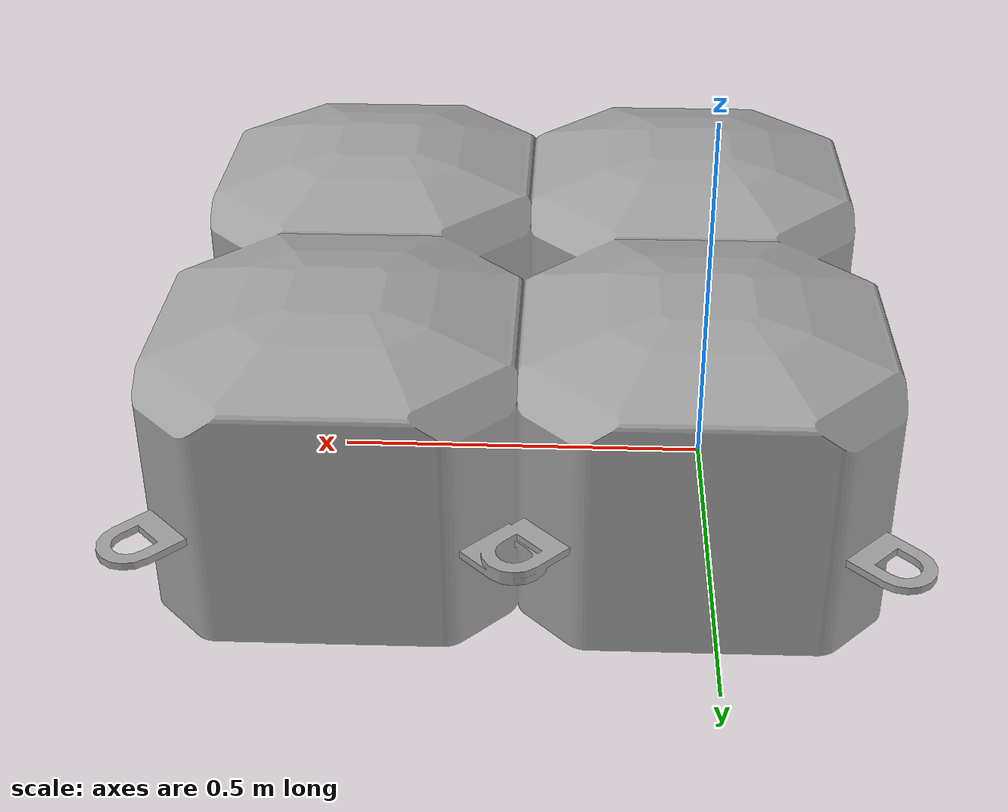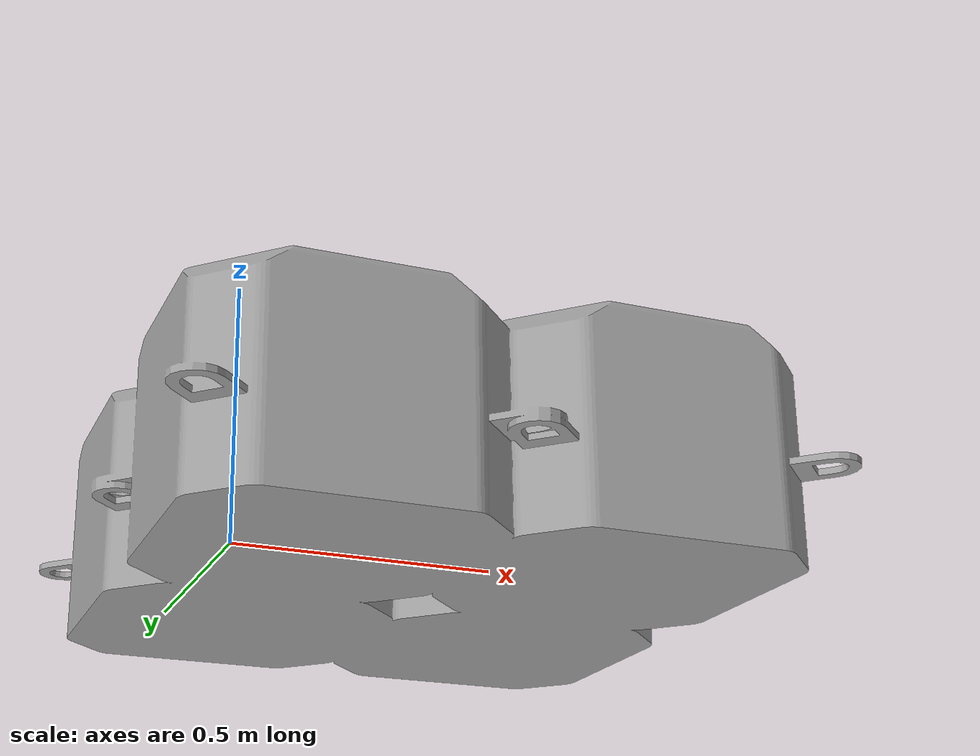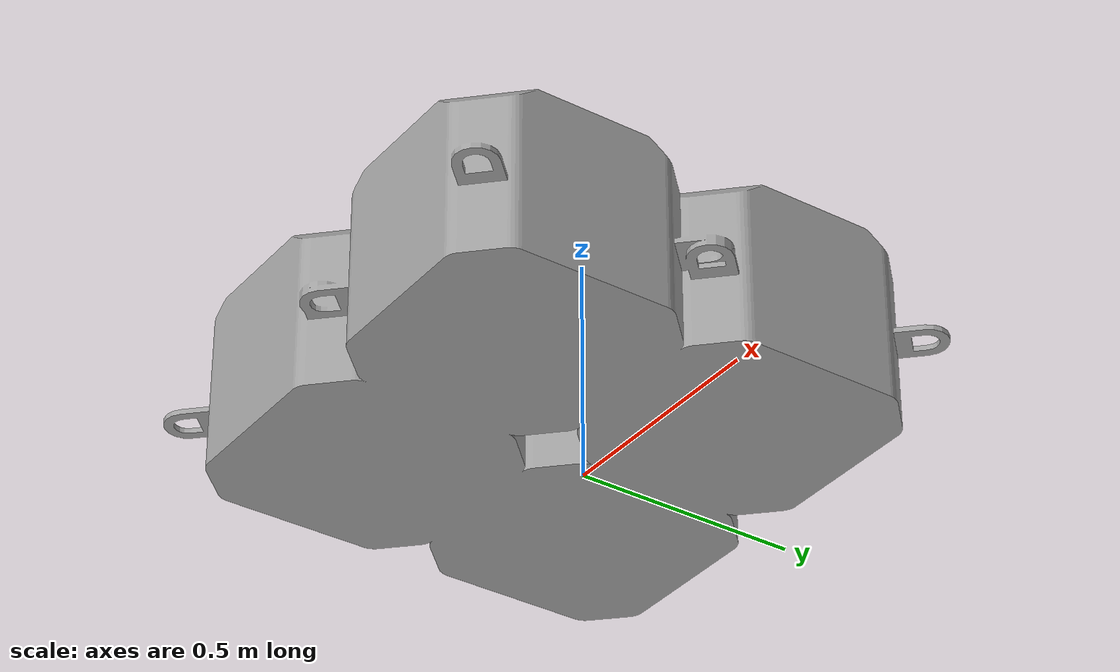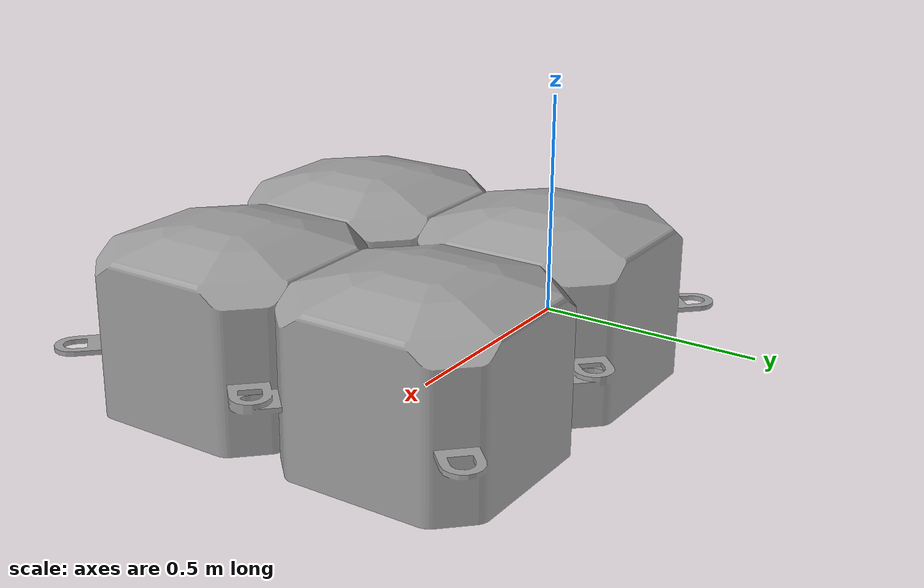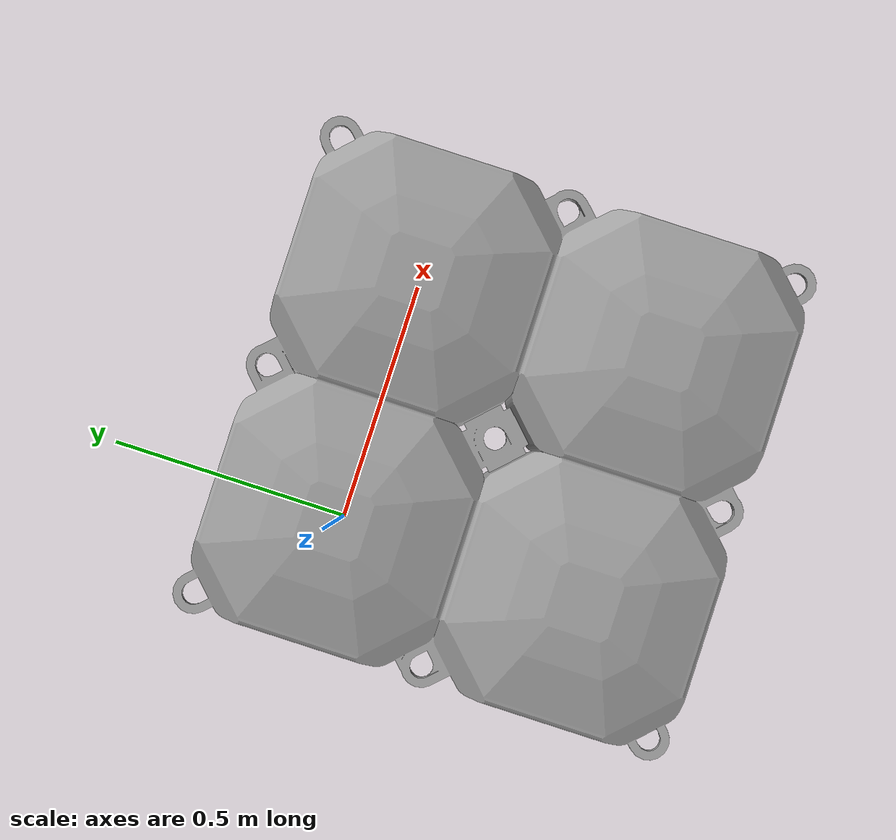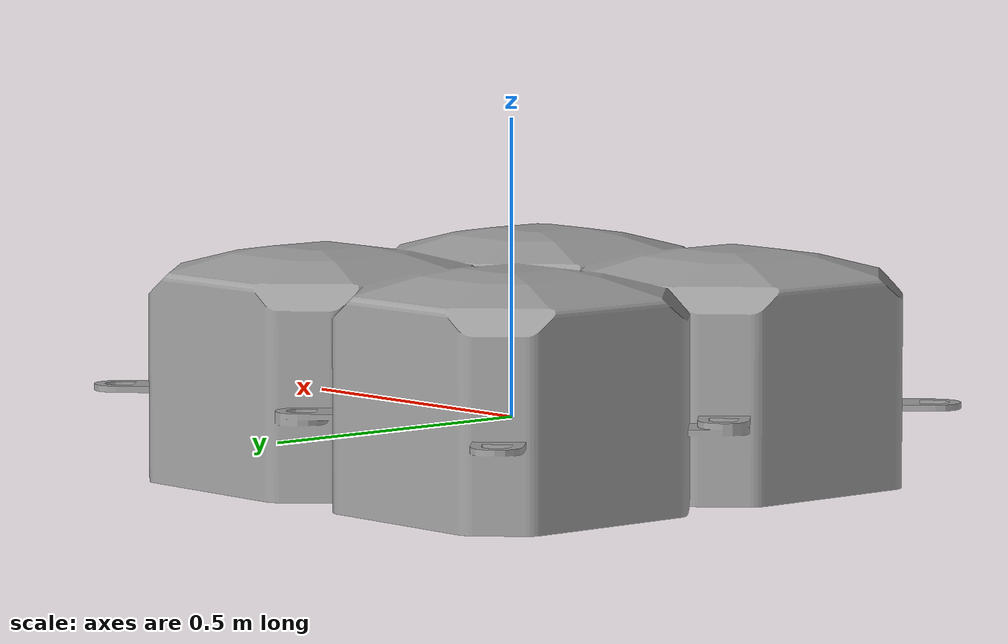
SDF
<?xml version="1.0"?>
<sdf version="1.5">
  <model name="dock_block_2x2">
    <static>true</static>
    <pose>0 0 0.25 0 0 0</pose>
    <link name="link">
      <collision name="collision">
        <pose>0.25 -0.25 -0.2 0 0 0</pose>
        <geometry>
          <box>
            <size>1 1 0.4</size>
          </box>
        </geometry>
      </collision>
      <visual name="visual">
        <geometry>
          <mesh>
            <uri>model://dock_block_2x2/mesh/dock_block_2x2.dae</uri>
          </mesh>
        </geometry>
      </visual>
    </link>
  </model>
</sdf>
